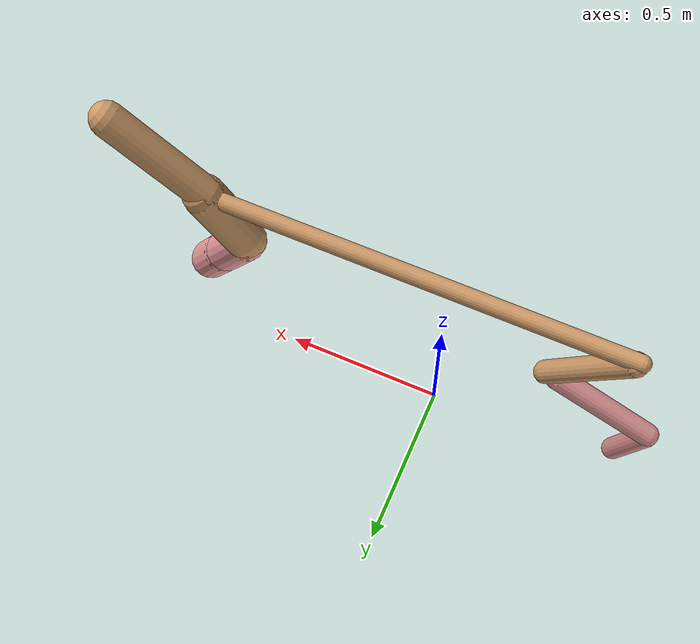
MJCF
<mujoco model="cheetah">
  <compiler angle="radian" coordinate="local" inertiafromgeom="true" settotalmass="14" />
  <default>
    <joint armature=".1" damping=".01" limited="true" solimplimit="0 .8 .03" solreflimit=".02 1" stiffness="8" />
    <geom conaffinity="0" condim="3" contype="1" friction="0.8 .1 .1" rgba="0.8 0.6 .4 1" solimp="0.0 0.8 0.01" solref="0.02 1" />
    <motor ctrllimited="true" ctrlrange="-1 1" />
  </default>
  <size nstack="300000" nuser_geom="1" />
  <option gravity="0 0 -9.81" timestep="0.01" />
  <worldbody>
    <body name="torso" pos="0.0 0.0 0.7878557546957937">
      <joint armature="0" axis="1 0 0" damping="0" limited="false" name="ignorex" pos="0 0 0" stiffness="0" type="slide" />
      <joint armature="0" axis="0 0 1" damping="0" limited="false" name="ignorez" pos="0 0 0" stiffness="0" type="slide" />
      <joint armature="0" axis="0 1 0" damping="0" limited="false" name="ignorey" pos="0 0 0" stiffness="0" type="hinge" />
      <geom fromto="-0.5 0.0 0.0 0.6777923028108086 0.0 0.0" name="torso" size="0.023751926580379314" type="capsule" />
      <geom axisangle="0 1 0 .87" name="head" pos="0.7777923028108086 0.0 0.1" size="0.04624512163141371 0.15" type="capsule" />

      <body name="bthigh" pos="-.5 0 0">
        <joint axis="0 1 0" damping="6" name="bthigh" pos="0 0 0" range="-.52 1.05" stiffness="240" type="hinge" />
        <geom axisangle="0 1 0 -3.8" name="bthigh" pos="0.10658233632278515 0.0 -0.1385570372196207" size="0.032710921832558144 0.15579583426346616" type="capsule" />
        <body name="bshin" pos="0.17316467264557028 0.0 -0.2671140744392414">
          <joint axis="0 1 0" damping="4.5" name="bshin" pos="0 0 0" range="-.785 .785" stiffness="180" type="hinge" />
          <geom axisangle="0 1 0 -2.03" name="bshin" pos="-0.14998905625666142 0.0 -0.07499452812833071" rgba="0.9 0.6 0.6 1" size="0.032710921832558144 0.16116810441048224" type="capsule" />
          <body name="bfoot" pos="-0.29997811251332285 0.0 -0.14998905625666142">
            <joint axis="0 1 0" damping="3" name="bfoot" pos="0 0 0" range="-.4 .785" stiffness="120" type="hinge" />
            <geom axisangle="0 1 0 -.27" name="bfoot" pos="0.03206789767519075 0.0 -0.10368620248311675" rgba="0.9 0.6 0.6 1" size="0.032710921832558144 0.10099867876390221" type="capsule" />
            <inertial mass="10" />
          </body>
        </body>
      </body>
      <body name="fthigh" pos="0.6777923028108086 0.0 0.0">
        <joint axis="0 1 0" damping="4.5" name="fthigh" pos="0 0 0" range="-1.5 0.8" stiffness="180" type="hinge" />
        <geom axisangle="0 1 0 .52" name="fthigh" pos="-0.04989554608158897 0.0 -0.0855352218541525" size="0.05768381681388216 0.0931" type="capsule" />
        <body name="fshin" pos="-0.09979109216317794 0.0 -0.171070443708305">
          <joint axis="0 1 0" damping="3" name="fshin" pos="0 0 0" range="-1.2 1.1" stiffness="120" type="hinge" />
          <geom axisangle="0 1 0 -.6" name="fshin" pos="0.046381400387749405 0.0 -0.06422040053688378" rgba="0.9 0.6 0.6 1" size="0.05768381681388216 0.07419999999999999" type="capsule" />
          <body name="ffoot" pos="0.09276280077549881 0.0 -0.12844080107376757">
            <joint axis="0 1 0" damping="1.5" name="ffoot" pos="0 0 0" range="-3.1 -0.3" stiffness="60" type="hinge" />
            <geom axisangle="0 1 0 -.6" name="ffoot" pos="0.033644090582416526 0.0 -0.05233525201709238" rgba="0.9 0.6 0.6 1" size="0.05768381681388216 0.049" type="capsule" />
            <inertial mass="10" />
          </body>
        </body>
      </body>
    </body>
  </worldbody>
  <actuator>
    <motor gear="120" joint="bthigh" name="bthigh" />
    <motor gear="90" joint="bshin" name="bshin" />
    <motor gear="60" joint="bfoot" name="bfoot" />
    <motor gear="120" joint="fthigh" name="fthigh" />
    <motor gear="60" joint="fshin" name="fshin" />
    <motor gear="30" joint="ffoot" name="ffoot" />
  </actuator>
</mujoco>
